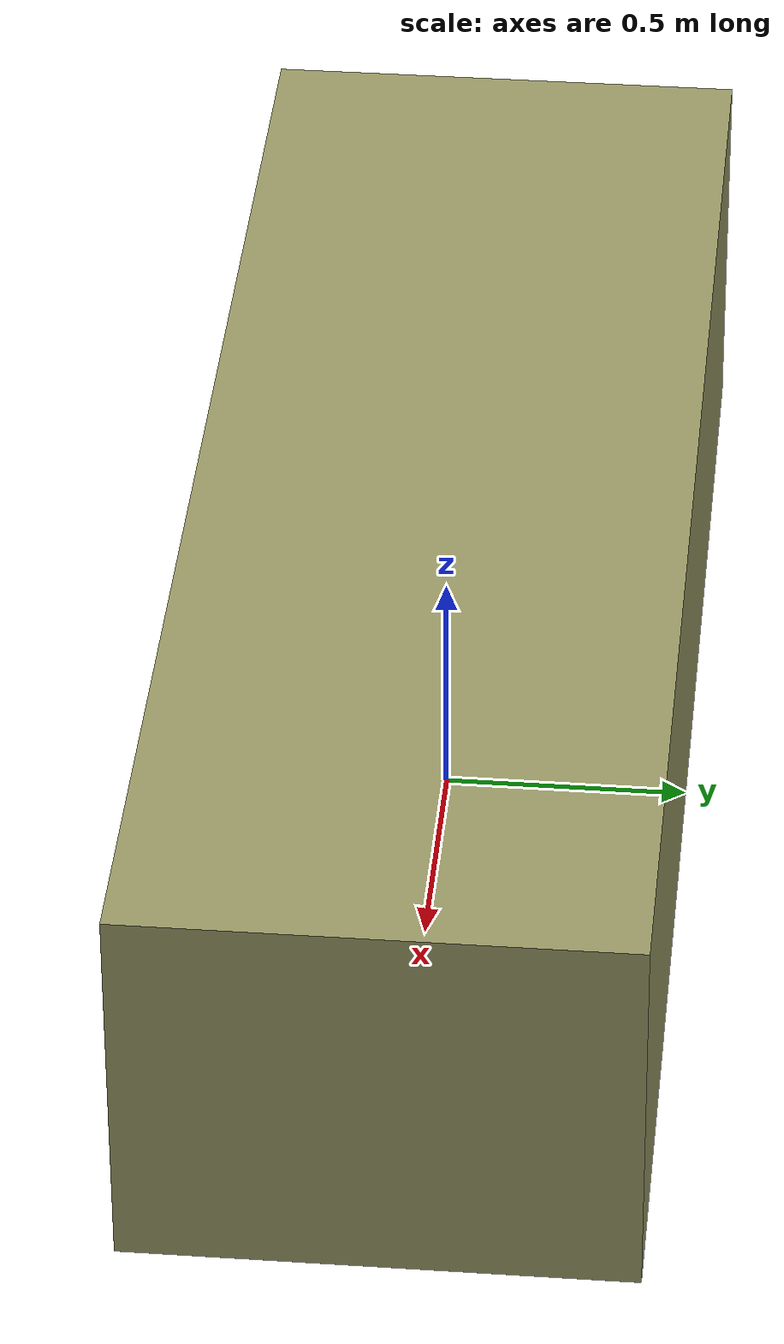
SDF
<?xml version="1.0"?>
<sdf version="1.7">
  <model name="obstacle_barrier">
    <static>1</static>
    <link name="link">
      <inertial>
        <mass>1</mass>
        <inertia>
          <ixx>0.166667</ixx>
          <ixy>0</ixy>
          <ixz>0</ixz>
          <iyy>0.166667</iyy>
          <iyz>0</iyz>
          <izz>0.166667</izz>
        </inertia>
        <pose>0 0 0 0 -0 0</pose>
      </inertial>
      <collision name="collision">
        <geometry>
          <box>
            <size>3.0 1.0 0.8</size>
          </box>
        </geometry>
        <surface>
          <friction>
            <ode>
              <mu>0.5</mu>
              <mu2>0.5</mu2>
            </ode>
          </friction>
          <bounce>
            <restitution_coefficient>0</restitution_coefficient>
          </bounce>
          <contact>
            <ode/>
          </contact>
        </surface>
        <max_contacts>10</max_contacts>
      </collision>
      <visual name="visual">
        <geometry>
          <box>
            <size>3.0 1.0 0.8</size>
          </box>
        </geometry>
        <material>
          <ambient>0.5 0.5 0.3 1</ambient>
          <diffuse>0.6 0.6 0.4 1</diffuse>
          <specular>0.1 0.1 0.1 1</specular>
        </material>
      </visual>
      <pose>0 0 0.4 0 -0 0</pose>
    </link>
  </model>
</sdf>
